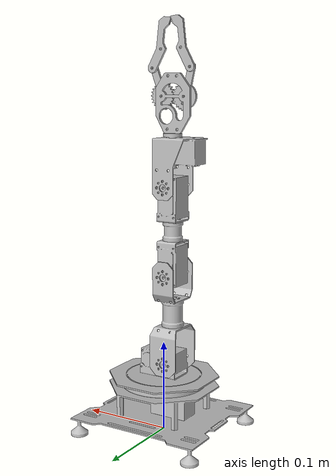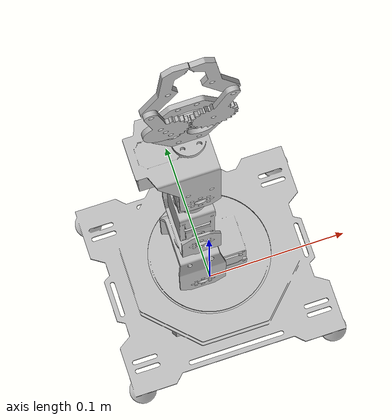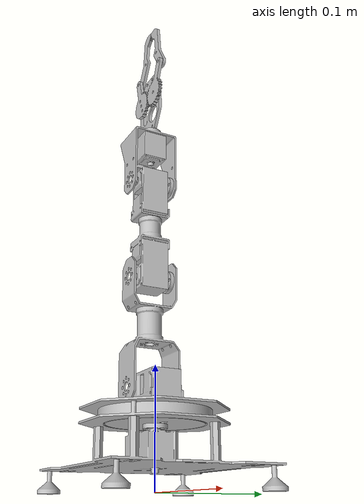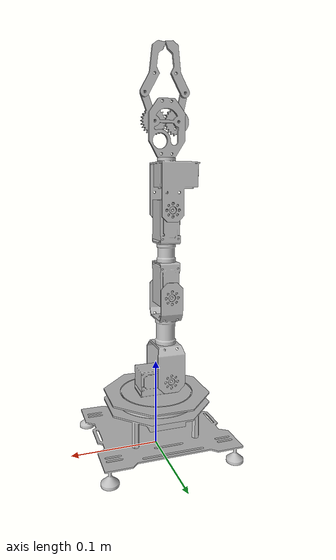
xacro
<?xml version="1.0"?>
<robot xmlns:xacro="http://www.ros.org/wiki/xacro" name="xarm">
    <xacro:arg name="initial_positions_file" default="initial_positions.yaml" />

    <!-- Import xarm urdf file -->
    <xacro:include filename="$(find xarm_description)/urdf/xarm.xacro" />

    <!-- Import control_xacro -->
    <xacro:include filename="xarm.ros2_control.xacro" />

    <xacro:xarm_ros2_control name="FakeSystem" initial_positions_file="$(arg initial_positions_file)"/>

</robot>

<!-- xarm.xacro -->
<robot name="xarm" xmlns:xacro="http://www.ros.org/wiki/xacro">

<xacro:arg name="use_gazebo" default="false"/>

<xacro:include filename="$(find xarm_description)/urdf/materials.xacro" />
<xacro:include filename="$(find xarm_description)/urdf/xarm.gazebo" />

<!-- Only include Gazebo ros2_control if use_gazebo is true -->
<xacro:if value="$(arg use_gazebo)">
  <xacro:include filename="$(find xarm_description)/urdf/xarm.ros2_control.xacro" />
</xacro:if>
<link name="base_link">
  <inertial>
    <origin xyz="-0.003348274822226489 -4.457765549128597e-05 0.031108613282001457" rpy="0 0 0"/>
    <mass value="0.6644929679243374"/>
    <inertia ixx="0.000975" iyy="0.001164" izz="0.00175" ixy="1e-06" iyz="1e-06" ixz="4e-06"/>
  </inertial>
  <visual>
    <origin xyz="0 0 0" rpy="0 0 0"/>
    <geometry>
      <mesh filename="package://xarm_description/meshes/base_link.stl" scale="0.001 0.001 0.001"/>
    </geometry>
    <material name="silver"/>
  </visual>
  <collision>
    <origin xyz="0 0 0" rpy="0 0 0"/>
    <geometry>
      <mesh filename="package://xarm_description/meshes/base_link.stl" scale="0.001 0.001 0.001"/>
    </geometry>
  </collision>
</link>

<link name="Link_1_1">
  <inertial>
    <origin xyz="-0.0002094572914486825 0.00033317796147965597 0.01593296799246819" rpy="0 0 0"/>
    <mass value="0.5742300530268866"/>
    <inertia ixx="0.000342" iyy="0.000362" izz="0.000522" ixy="1e-06" iyz="-3e-06" ixz="1e-06"/>
  </inertial>
  <visual>
    <origin xyz="-0.0 -0.0 -0.05157" rpy="0 0 0"/>
    <geometry>
      <mesh filename="package://xarm_description/meshes/Link_1_1.stl" scale="0.001 0.001 0.001"/>
    </geometry>
    <material name="silver"/>
  </visual>
  <collision>
    <origin xyz="-0.0 -0.0 -0.05157" rpy="0 0 0"/>
    <geometry>
      <mesh filename="package://xarm_description/meshes/Link_1_1.stl" scale="0.001 0.001 0.001"/>
    </geometry>
  </collision>
</link>

<link name="Link_2_1">
  <inertial>
    <origin xyz="-2.3791800149788878e-08 -0.019712394499864273 0.04970508367650449" rpy="0 0 0"/>
    <mass value="0.1455717481960074"/>
    <inertia ixx="0.000136" iyy="0.000116" izz="3.6e-05" ixy="-0.0" iyz="-0.0" ixz="0.0"/>
  </inertial>
  <visual>
    <origin xyz="0.011352 -0.0197 -0.08217" rpy="0 0 0"/>
    <geometry>
      <mesh filename="package://xarm_description/meshes/Link_2_1.stl" scale="0.001 0.001 0.001"/>
    </geometry>
    <material name="silver"/>
  </visual>
  <collision>
    <origin xyz="0.011352 -0.0197 -0.08217" rpy="0 0 0"/>
    <geometry>
      <mesh filename="package://xarm_description/meshes/Link_2_1.stl" scale="0.001 0.001 0.001"/>
    </geometry>
  </collision>
</link>

<link name="Link_3_1">
  <inertial>
    <origin xyz="-7.122857870788327e-06 -0.018581014253473322 0.017097769799803042" rpy="0 0 0"/>
    <mass value="0.26324978747418754"/>
    <inertia ixx="0.0001" iyy="9.4e-05" izz="2.8e-05" ixy="-0.0" iyz="2e-06" ixz="0.0"/>
  </inertial>
  <visual>
    <origin xyz="0.011352 -0.019288 -0.17857" rpy="0 0 0"/>
    <geometry>
      <mesh filename="package://xarm_description/meshes/Link_3_1.stl" scale="0.001 0.001 0.001"/>
    </geometry>
    <material name="silver"/>
  </visual>
  <collision>
    <origin xyz="0.011352 -0.019288 -0.17857" rpy="0 0 0"/>
    <geometry>
      <mesh filename="package://xarm_description/meshes/Link_3_1.stl" scale="0.001 0.001 0.001"/>
    </geometry>
  </collision>
</link>

<link name="Link_4_1">
  <inertial>
    <origin xyz="3.6127901348067745e-05 0.0008733043177863664 0.025400027960974403" rpy="0 0 0"/>
    <mass value="0.22564506273767437"/>
    <inertia ixx="5.6e-05" iyy="4.9e-05" izz="2.6e-05" ixy="-0.0" iyz="-1e-06" ixz="-0.0"/>
  </inertial>
  <visual>
    <origin xyz="0.01139 2.5e-05 -0.236881" rpy="0 0 0"/>
    <geometry>
      <mesh filename="package://xarm_description/meshes/Link_4_1.stl" scale="0.001 0.001 0.001"/>
    </geometry>
    <material name="silver"/>
  </visual>
  <collision>
    <origin xyz="0.01139 2.5e-05 -0.236881" rpy="0 0 0"/>
    <geometry>
      <mesh filename="package://xarm_description/meshes/Link_4_1.stl" scale="0.001 0.001 0.001"/>
    </geometry>
  </collision>
</link>

<link name="Link_5_1">
  <inertial>
    <origin xyz="-0.009148454843216183 -0.01971246032678109 0.03620196648707186" rpy="0 0 0"/>
    <mass value="0.2700592895350034"/>
    <inertia ixx="6.6e-05" iyy="8e-05" izz="7.1e-05" ixy="-0.0" iyz="-0.0" ixz="4e-06"/>
  </inertial>
  <visual>
    <origin xyz="0.011352 -0.0197 -0.274285" rpy="0 0 0"/>
    <geometry>
      <mesh filename="package://xarm_description/meshes/Link_5_1.stl" scale="0.001 0.001 0.001"/>
    </geometry>
    <material name="silver"/>
  </visual>
  <collision>
    <origin xyz="0.011352 -0.0197 -0.274285" rpy="0 0 0"/>
    <geometry>
      <mesh filename="package://xarm_description/meshes/Link_5_1.stl" scale="0.001 0.001 0.001"/>
    </geometry>
  </collision>
</link>

<link name="gripper_base_1">
  <inertial>
    <origin xyz="-0.001081001995750704 4.999553741422562e-07 0.03187603841232539" rpy="0 0 0"/>
    <mass value="0.03250334179699039"/>
    <inertia ixx="1.1e-05" iyy="1.5e-05" izz="5e-06" ixy="0.0" iyz="0.0" ixz="-0.0"/>
  </inertial>
  <visual>
    <origin xyz="0.011002 1.3e-05 -0.329946" rpy="0 0 0"/>
    <geometry>
      <mesh filename="package://xarm_description/meshes/gripper_base_1.stl" scale="0.001 0.001 0.001"/>
    </geometry>
    <material name="silver"/>
  </visual>
  <collision>
    <origin xyz="0.011002 1.3e-05 -0.329946" rpy="0 0 0"/>
    <geometry>
      <mesh filename="package://xarm_description/meshes/gripper_base_1.stl" scale="0.001 0.001 0.001"/>
    </geometry>
  </collision>
</link>

<link name="finger_1_1">
  <inertial>
    <origin xyz="0.001966971875994117 -0.0014995000446259943 0.005124235992251369" rpy="0 0 0"/>
    <mass value="0.01630298468358439"/>
    <inertia ixx="2e-06" iyy="3e-06" izz="1e-06" ixy="0.0" iyz="0.0" ixz="-1e-06"/>
  </inertial>
  <visual>
    <origin xyz="-0.002548 0.001513 -0.367996" rpy="0 0 0"/>
    <geometry>
      <mesh filename="package://xarm_description/meshes/finger_1_1.stl" scale="0.001 0.001 0.001"/>
    </geometry>
    <material name="silver"/>
  </visual>
  <collision>
    <origin xyz="-0.002548 0.001513 -0.367996" rpy="0 0 0"/>
    <geometry>
      <mesh filename="package://xarm_description/meshes/finger_1_1.stl" scale="0.001 0.001 0.001"/>
    </geometry>
  </collision>
</link>

<link name="finger_2_1">
  <inertial>
    <origin xyz="-0.0007608779393055883 -0.0014995000500236202 0.005122395959460624" rpy="0 0 0"/>
    <mass value="0.01672496232433782"/>
    <inertia ixx="2e-06" iyy="3e-06" izz="1e-06" ixy="0.0" iyz="-0.0" ixz="0.0"/>
  </inertial>
  <visual>
    <origin xyz="0.024452 0.001513 -0.367996" rpy="0 0 0"/>
    <geometry>
      <mesh filename="package://xarm_description/meshes/finger_2_1.stl" scale="0.001 0.001 0.001"/>
    </geometry>
    <material name="silver"/>
  </visual>
  <collision>
    <origin xyz="0.024452 0.001513 -0.367996" rpy="0 0 0"/>
    <geometry>
      <mesh filename="package://xarm_description/meshes/finger_2_1.stl" scale="0.001 0.001 0.001"/>
    </geometry>
  </collision>
</link>

<link name="Gripper_end_1_1">
  <inertial>
    <origin xyz="-0.008709267199550398 0.0015004999553736196 0.023308296150939045" rpy="0 0 0"/>
    <mass value="0.012557670523597225"/>
    <inertia ixx="3e-06" iyy="4e-06" izz="2e-06" ixy="-0.0" iyz="0.0" ixz="1e-06"/>
  </inertial>
  <visual>
    <origin xyz="-0.013657 0.001513 -0.396937" rpy="0 0 0"/>
    <geometry>
      <mesh filename="package://xarm_description/meshes/Gripper_end_1_1.stl" scale="0.001 0.001 0.001"/>
    </geometry>
    <material name="silver"/>
  </visual>
  <collision>
    <origin xyz="-0.013657 0.001513 -0.396937" rpy="0 0 0"/>
    <geometry>
      <mesh filename="package://xarm_description/meshes/Gripper_end_1_1.stl" scale="0.001 0.001 0.001"/>
    </geometry>
  </collision>
</link>

<link name="Gripper_end_2_1">
  <inertial>
    <origin xyz="0.008709194843970345 0.0015004999553735558 0.023308701233581364" rpy="0 0 0"/>
    <mass value="0.012557670523597225"/>
    <inertia ixx="3e-06" iyy="4e-06" izz="2e-06" ixy="0.0" iyz="0.0" ixz="-1e-06"/>
  </inertial>
  <visual>
    <origin xyz="0.03173 0.001513 -0.398118" rpy="0 0 0"/>
    <geometry>
      <mesh filename="package://xarm_description/meshes/Gripper_end_2_1.stl" scale="0.001 0.001 0.001"/>
    </geometry>
    <material name="silver"/>
  </visual>
  <collision>
    <origin xyz="0.03173 0.001513 -0.398118" rpy="0 0 0"/>
    <geometry>
      <mesh filename="package://xarm_description/meshes/Gripper_end_2_1.stl" scale="0.001 0.001 0.001"/>
    </geometry>
  </collision>
</link>

<joint name="base_to_link1" type="revolute">
  <origin xyz="0.0 0.0 0.05157" rpy="0 0 0"/>
  <parent link="base_link"/>
  <child link="Link_1_1"/>
  <axis xyz="0.0 -0.0 -1.0"/>
  <limit upper="3.141593" lower="-3.141593" effort="100" velocity="100"/>
</joint>

<joint name="link1_to_link2" type="revolute">
  <origin xyz="-0.011352 0.0197 0.0306" rpy="0 0 0"/>
  <parent link="Link_1_1"/>
  <child link="Link_2_1"/>
  <axis xyz="-0.0 -1.0 -0.0"/>
  <limit upper="1.570796" lower="-1.570796" effort="100" velocity="100"/>
</joint>

<joint name="link2_to_link3" type="revolute">
  <origin xyz="0.0 -0.000412 0.0964" rpy="0 0 0"/>
  <parent link="Link_2_1"/>
  <child link="Link_3_1"/>
  <axis xyz="-0.0 -1.0 -0.0"/>
  <limit upper="2.268928" lower="-2.268928" effort="100" velocity="100"/>
</joint>

<joint name="link3_4_Bridge" type="fixed">
  <origin xyz="-3.8e-05 -0.019313 0.058311" rpy="0 0 0"/>
  <parent link="Link_3_1"/>
  <child link="Link_4_1"/>
</joint>

<joint name="linkt_to_link5" type="revolute">
  <origin xyz="3.8e-05 0.019725 0.037404" rpy="0 0 0"/>
  <parent link="Link_4_1"/>
  <child link="Link_5_1"/>
  <axis xyz="0.0 -1.0 -0.0"/>
  <limit upper="2.268928" lower="-2.268928" effort="100" velocity="100"/>
</joint>

<joint name="link5_to_gripperbase" type="revolute">
  <origin xyz="0.00035 -0.019713 0.055661" rpy="0 0 0"/>
  <parent link="Link_5_1"/>
  <child link="gripper_base_1"/>
  <axis xyz="0.0 0.0 -1.0"/>
  <limit upper="3.141593" lower="-3.141593" effort="100" velocity="100"/>
</joint>

<joint name="gripper_finger1_joint" type="revolute">
  <origin xyz="0.01355 -0.0015 0.03805" rpy="0 0 0"/>
  <parent link="gripper_base_1"/>
  <child link="finger_1_1"/>
  <axis xyz="-0.0 -1.0 -0.0"/>
  <limit upper="0.0" lower="-0.872665" effort="100" velocity="100"/>
</joint>

<joint name="gripper_finger2_joint" type="revolute">
  <origin xyz="-0.01345 -0.0015 0.03805" rpy="0 0 0"/>
  <parent link="gripper_base_1"/>
  <child link="finger_2_1"/>
  <axis xyz="-0.0 -1.0 -0.0"/>
  <limit upper="0.872665" lower="0.0" effort="100" velocity="100"/>
</joint>

<joint name="Rigid 10" type="fixed">
  <origin xyz="0.011109 0.0 0.028941" rpy="0 0 0"/>
  <parent link="finger_1_1"/>
  <child link="Gripper_end_1_1"/>
</joint>

<joint name="Rigid 11" type="fixed">
  <origin xyz="-0.007278 0.0 0.030122" rpy="0 0 0"/>
  <parent link="finger_2_1"/>
  <child link="Gripper_end_2_1"/>
</joint>

</robot>

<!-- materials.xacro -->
<robot xmlns:xacro="http://www.ros.org/wiki/xacro">
  <material name="silver">
    <color rgba="0.75 0.75 0.75 1.0"/>
  </material>

  <!-- Add more materials as needed -->
</robot>

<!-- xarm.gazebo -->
<robot name="xarm" xmlns:xacro="http://www.ros.org/wiki/xacro" >

<xacro:property name="body_color" value="Gazebo/Silver" />

<gazebo>
  <plugin filename="libgazebo_ros2_control.so" name="gazebo_ros2_control">
    <parameters>$(find xarm_description)/launch/controller.yaml</parameters>
  </plugin>
</gazebo>
<gazebo reference="base_link">
  <material>${body_color}</material>
  <mu1>0.2</mu1>
  <mu2>0.2</mu2>
  <selfCollide>true</selfCollide>
  <gravity>true</gravity>
</gazebo>

<gazebo reference="Link_1_1">
  <material>${body_color}</material>
  <mu1>0.2</mu1>
  <mu2>0.2</mu2>
  <selfCollide>true</selfCollide>
</gazebo>

<gazebo reference="Link_2_1">
  <material>${body_color}</material>
  <mu1>0.2</mu1>
  <mu2>0.2</mu2>
  <selfCollide>true</selfCollide>
</gazebo>

<gazebo reference="Link_3_1">
  <material>${body_color}</material>
  <mu1>0.2</mu1>
  <mu2>0.2</mu2>
  <selfCollide>true</selfCollide>
</gazebo>

<gazebo reference="Link_4_1">
  <material>${body_color}</material>
  <mu1>0.2</mu1>
  <mu2>0.2</mu2>
  <selfCollide>true</selfCollide>
</gazebo>

<gazebo reference="Link_5_1">
  <material>${body_color}</material>
  <mu1>0.2</mu1>
  <mu2>0.2</mu2>
  <selfCollide>true</selfCollide>
</gazebo>

<gazebo reference="gripper_base_1">
  <material>${body_color}</material>
  <mu1>0.2</mu1>
  <mu2>0.2</mu2>
  <selfCollide>true</selfCollide>
</gazebo>

<gazebo reference="finger_1_1">
  <material>${body_color}</material>
  <mu1>0.2</mu1>
  <mu2>0.2</mu2>
  <selfCollide>true</selfCollide>
</gazebo>

<gazebo reference="finger_2_1">
  <material>${body_color}</material>
  <mu1>0.2</mu1>
  <mu2>0.2</mu2>
  <selfCollide>true</selfCollide>
</gazebo>

<gazebo reference="Gripper_end_1_1">
  <material>${body_color}</material>
  <mu1>0.2</mu1>
  <mu2>0.2</mu2>
  <selfCollide>true</selfCollide>
</gazebo>

<gazebo reference="Gripper_end_2_1">
  <material>${body_color}</material>
  <mu1>0.2</mu1>
  <mu2>0.2</mu2>
  <selfCollide>true</selfCollide>
</gazebo>

</robot>
